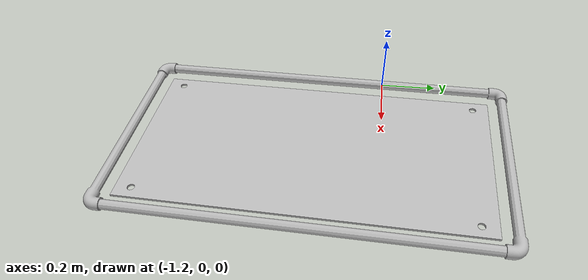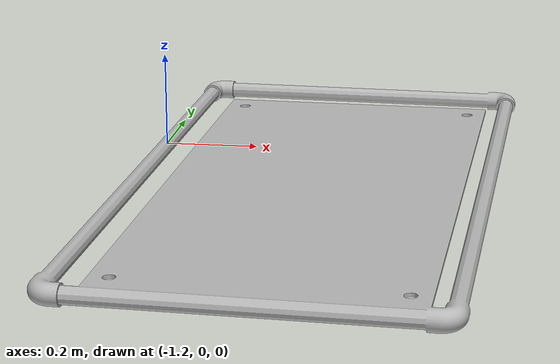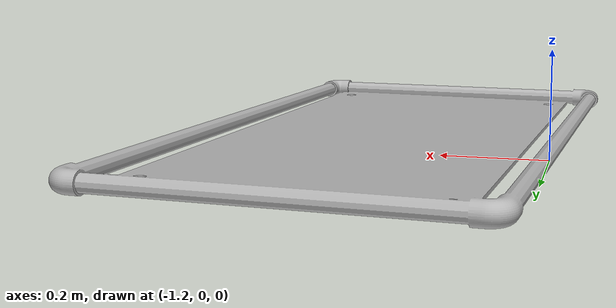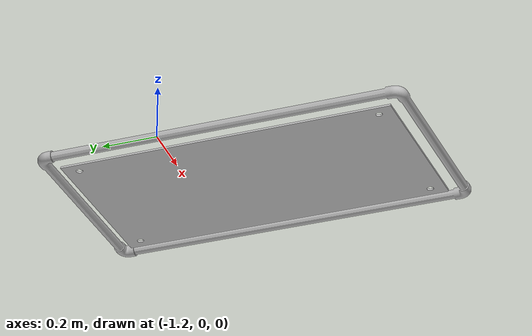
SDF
<sdf version='1.6'>
  <model name='Bootlegger_Buoy'>
    <static>true</static>
    <link name='base_link'>
      <pose frame=''>0 0 0 0 -0 0</pose>
      <inertial>
        <pose frame=''>-0.845799 0.235134 0.009916 0 -0 0</pose>
        <mass>8.45052</mass>
        <inertia>
          <ixx>0.978466</ixx>
          <ixy>0.0388385</ixy>
          <ixz>0.0020155</ixz>
          <iyy>0.239042</iyy>
          <iyz>-0.0222223</iyz>
          <izz>1.21612</izz>
        </inertia>
      </inertial>
      <collision name='base_link_collision'>
        <pose frame=''>0 0 0 0 -0 0</pose>
        <geometry>
          <mesh>
            <scale>1 1 1</scale>
            <uri>file://Bootlegger_Posters/Bootlegger_Buoy.dae</uri>
          </mesh>
        </geometry>
      </collision>
      <visual name='base_link_visual'>
        <pose frame=''>0 0 0 0 -0 0</pose>
        <geometry>
          <mesh>
            <scale>1 1 1</scale>
            <uri>file://Bootlegger_Posters/Bootlegger_Buoy.dae</uri>
          </mesh>
        </geometry>
      </visual>
    </link>
  </model>
</sdf>
